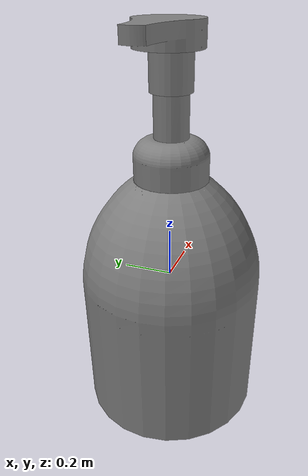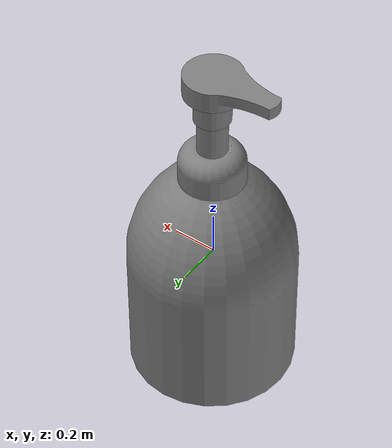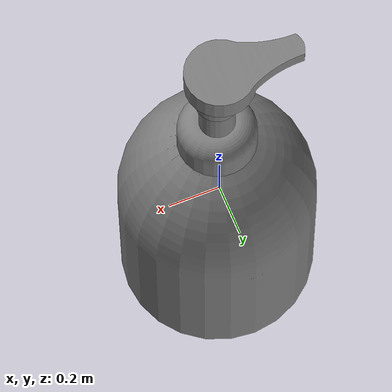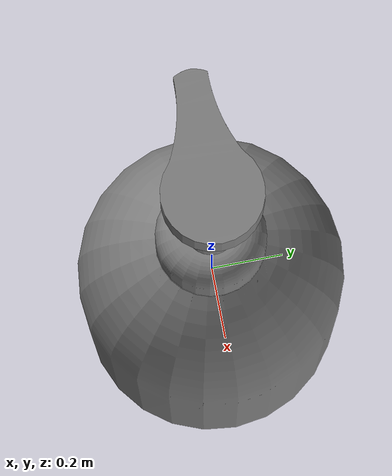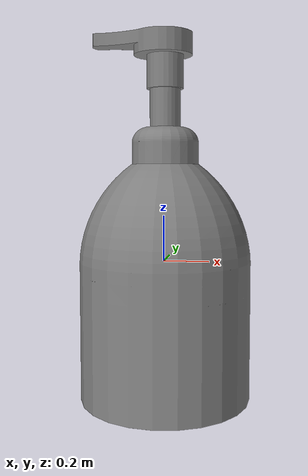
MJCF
<?xml version='1.0' encoding='UTF-8'?>
<mujoco model="partnet_7a302fce-e8d2-49a0-a970-9b6b2ef30a8e-0">
  <compiler angle="radian"/>
  <asset>
    <mesh name="original_5" content_type="model/obj" file="textured_objs/original_5.obj"/>
    <mesh name="original_6" content_type="model/obj" file="textured_objs/original_6.obj"/>
    <mesh name="original_3" content_type="model/obj" file="textured_objs/original_3.obj"/>
    <mesh name="original_4" content_type="model/obj" file="textured_objs/original_4.obj"/>
    <mesh name="original_2" content_type="model/obj" file="textured_objs/original_2.obj"/>
  </asset>
  <worldbody>
    <body name="base">
      <body name="link_2" quat="0.5 0.5 -0.5 -0.5">
        <geom type="mesh" mesh="original_4"/>
        <geom type="mesh" mesh="original_2"/>
        <body name="link_1_helper" pos="0.0038035 0 -0.0071765">
          <inertial pos="0 0 0" mass="1e-06" diaginertia="1e-10 1e-10 1e-10"/>
          <joint name="joint_4" pos="0 0 0" axis="0 1 0" type="slide" range="0 0.02"/>
          <body name="link_1">
            <joint name="joint_1" pos="0 0 0" axis="0 -1 0"/>
            <geom pos="-0.0038035 0 0.0071765" quat="1 0 0 0" type="mesh" mesh="original_3"/>
            <body name="link_0_helper" pos="-7.65e-05 0 5.95e-05">
              <inertial pos="0 0 0" mass="1e-06" diaginertia="1e-10 1e-10 1e-10"/>
              <joint name="joint_3" pos="0 0 0" axis="0 -1 0" type="slide" range="0 0.05"/>
              <body name="link_0">
                <joint name="joint_0" pos="0 0 0" axis="0 1 0"/>
                <geom pos="-0.003727 0 0.007117" quat="1 0 0 0" type="mesh" mesh="original_5"/>
                <geom pos="-0.003727 0 0.007117" quat="1 0 0 0" type="mesh" mesh="original_6"/>
              </body>
            </body>
          </body>
        </body>
      </body>
    </body>
  </worldbody>
</mujoco>
